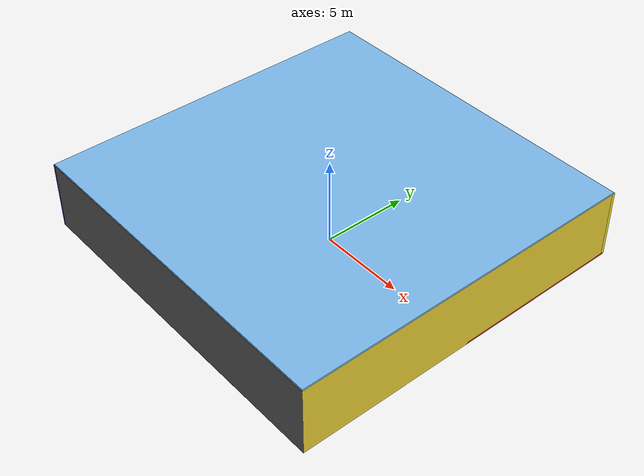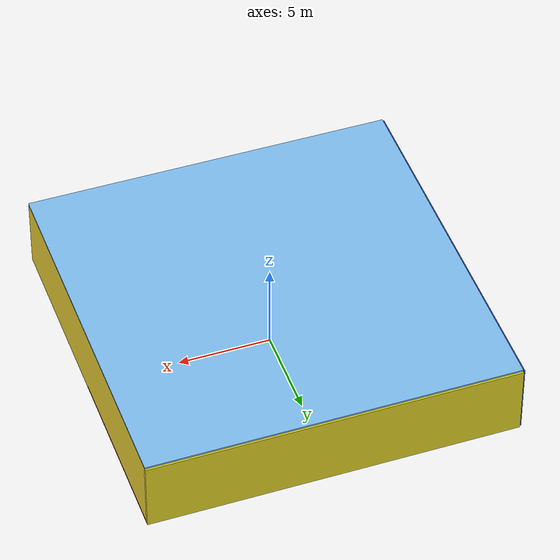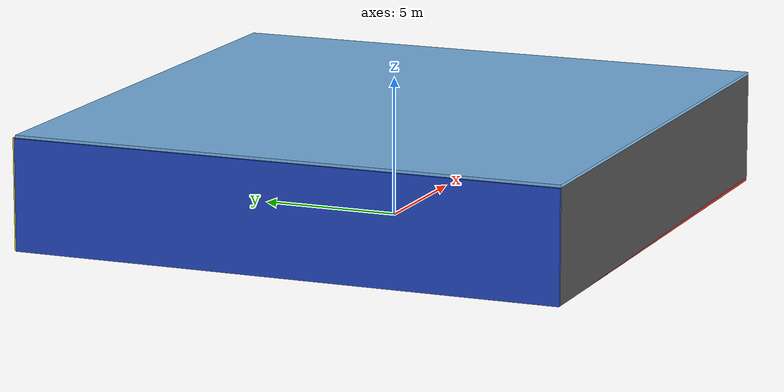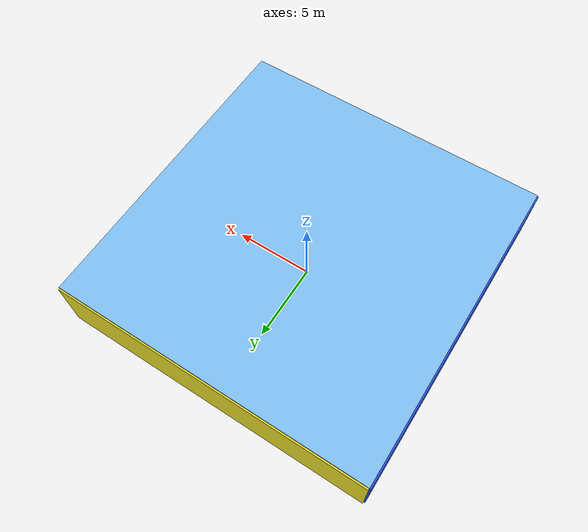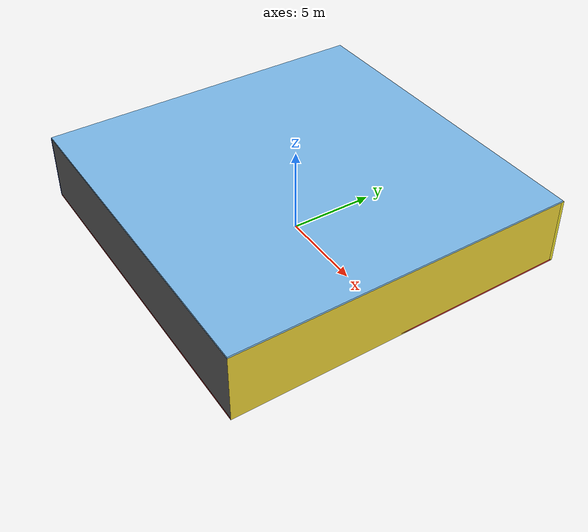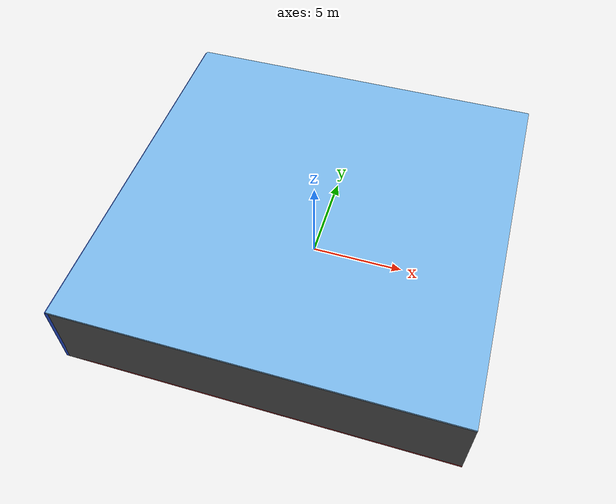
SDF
<sdf version="1.4">
 <world name="default">
  <physics type="ode">
   <max_step_size>0.001</max_step_size>
   <real_time_factor>1</real_time_factor>
   <real_time_update_rate>1000</real_time_update_rate>
   <gravity>0 0 -9.8</gravity>
  </physics>
  <scene><ambient>0.4 0.4 0.4 1</ambient><background>0.7 0.7 0.7 1</background><shadows>1</shadows></scene>
  <model name="Surrounding">
   <static>1</static>
   <link name="Ceiling">
    <collision name="Ceiling_Collision"><geometry><box><size>20 20 0.1</size></box></geometry></collision>
    <visual name="Ceiling_Visual">
     <geometry><box><size>20 20 0.1</size></box></geometry>
     <material>
      <script><uri>file://media/materials/scripts/gazebo.material</uri><name>Gazebo/SkyBlue</name></script>
     </material>
    </visual>
    <pose>0 0 4.05 0 0 0</pose>
   </link>
   <link name="Wall_South">
    <collision name="Wall_South_Collision">
     <geometry><box><size>20 0 4</size></box></geometry>
     <pose>0 0 2 0 -0 0</pose>
    </collision>
    <visual name="Wall_South_Visual">
     <pose>0 0 2 0 -0 0</pose>
     <geometry><box><size>20 0 4</size></box></geometry>
     <material>
      <script><uri>file://media/materials/scripts/gazebo.material</uri><name>Gazebo/Road</name></script>
     </material>
    </visual>
    <velocity_decay><linear>0</linear><angular>0</angular></velocity_decay>
    <pose>0 -10 0 0 -0 0</pose>
   </link>
   <link name="Wall_East">
    <collision name="Wall_21_Collision">
     <geometry><box><size>20 0 4</size></box></geometry>
     <pose>0 0 2 0 -0 0</pose>
    </collision>
    <visual name="Wall_21_Visual">
     <pose>0 0 2 0 -0 0</pose>
     <geometry><box><size>20 0 4</size></box></geometry>
     <material>
      <script><uri>file://media/materials/scripts/gazebo.material</uri><name>Gazebo/ZincYellow</name></script>
     </material>
    </visual>
    <velocity_decay><linear>0</linear><angular>0</angular></velocity_decay>
    <pose>10 0 0 0 -0 1.5708</pose>
   </link>
   <link name="Wall_North">
    <collision name="Wall_22_Collision">
     <geometry><box><size>20 0.2 4</size></box></geometry>
     <pose>0 0 2 0 -0 0</pose>
    </collision>
    <visual name="Wall_22_Visual">
     <pose>0 0 2 0 -0 0</pose>
     <geometry><box><size>20 0.2 4</size></box></geometry>
     <material>
      <script><uri>file://media/materials/scripts/gazebo.material</uri><name>Gazebo/YellowGlow</name></script>
     </material>
    </visual>
    <velocity_decay><linear>0</linear><angular>0</angular></velocity_decay>
    <pose>0 10 0 0 -0 0</pose>
   </link>
   <link name="Wall_West">
    <collision name="Wall_23_Collision">
     <geometry><box><size>20 0.2 4</size></box></geometry>
     <pose>0 0 2 0 -0 0</pose>
    </collision>
    <visual name="Wall_23_Visual">
     <pose>0 0 2 0 -0 0</pose>
     <geometry><box><size>20 0.2 4</size></box></geometry>
     <material>
      <script><uri>file://media/materials/scripts/gazebo.material</uri><name>Gazebo/Blue</name></script>
     </material>
    </visual>
    <velocity_decay><linear>0</linear><angular>0</angular></velocity_decay>
    <pose>-10 0 0 0 0 -1.5708</pose>
   </link>
   <link name="Ground_link">
    <collision name="collision">
     <pose>0 0 .05 0 -0 0</pose>
     <geometry><box><size>20 20 0.1</size></box></geometry>
    </collision>
    <visual name="visual">
     <pose>0 0 .05 0 -0 0</pose>
     <geometry><box><size>20 20 0.1</size></box></geometry>
     <material>
      <script><uri>file://media/materials/scripts/gazebo.material</uri><name>Gazebo/Red</name></script>
     </material>
    </visual>
   </link>
   <static>1</static>
  </model>
  <spherical_coordinates>
   <surface_model>EARTH_WGS84</surface_model>
   <latitude_deg>0</latitude_deg>
   <longitude_deg>0</longitude_deg>
   <elevation>0</elevation>
   <heading_deg>0</heading_deg>
  </spherical_coordinates>
  <light name="lightball_0" type="diffuse">
   <diffuse>0.8 0.8 0.8 1</diffuse>
   <specular>0.2 0.2 0.2 1</specular>
   <attenuation>
    <range>100</range>
    <constant>0.7</constant>
    <linear>0.01</linear>
    <quadratic>0.001</quadratic>
   </attenuation>
   <direction>-0.5 0.1 -0.9</direction>
   <pose>-0.304451151285 -2.68036827701 3.3761107302 0 0 0</pose>
  </light>
  <light name="lightball_1" type="diffuse">
   <diffuse>0.8 0.8 0.8 1</diffuse>
   <specular>0.2 0.2 0.2 1</specular>
   <attenuation>
    <range>100</range>
    <constant>0.7</constant>
    <linear>0.01</linear>
    <quadratic>0.001</quadratic>
   </attenuation>
   <direction>-0.5 0.1 -0.9</direction>
   <pose>6.03405595744 -9.97333964012 3.41489606779 0 0 0</pose>
  </light>
  <light name="lightball_2" type="diffuse">
   <diffuse>0.8 0.8 0.8 1</diffuse>
   <specular>0.2 0.2 0.2 1</specular>
   <attenuation>
    <range>100</range>
    <constant>0.7</constant>
    <linear>0.01</linear>
    <quadratic>0.001</quadratic>
   </attenuation>
   <direction>-0.5 0.1 -0.9</direction>
   <pose>-8.12329510246 9.22353238401 1.17342613035 0 0 0</pose>
  </light>
  <light name="lightball_3" type="diffuse">
   <diffuse>0.8 0.8 0.8 1</diffuse>
   <specular>0.2 0.2 0.2 1</specular>
   <attenuation>
    <range>100</range>
    <constant>0.7</constant>
    <linear>0.01</linear>
    <quadratic>0.001</quadratic>
   </attenuation>
   <direction>-0.5 0.1 -0.9</direction>
   <pose>-9.32276125046 -4.37374427819 0.628913812272 0 0 0</pose>
  </light>
  <light name="lightball_4" type="diffuse">
   <diffuse>0.8 0.8 0.8 1</diffuse>
   <specular>0.2 0.2 0.2 1</specular>
   <attenuation>
    <range>100</range>
    <constant>0.7</constant>
    <linear>0.01</linear>
    <quadratic>0.001</quadratic>
   </attenuation>
   <direction>-0.5 0.1 -0.9</direction>
   <pose>-0.48547420088 5.77164322937 2.10640928527 0 0 0</pose>
  </light>
  <light name="lightball_5" type="diffuse">
   <diffuse>0.8 0.8 0.8 1</diffuse>
   <specular>0.2 0.2 0.2 1</specular>
   <attenuation>
    <range>100</range>
    <constant>0.7</constant>
    <linear>0.01</linear>
    <quadratic>0.001</quadratic>
   </attenuation>
   <direction>-0.5 0.1 -0.9</direction>
   <pose>8.09963725815 6.43092380036 3.68310687575 0 0 0</pose>
  </light>
  <light name="lightball_6" type="diffuse">
   <diffuse>0.8 0.8 0.8 1</diffuse>
   <specular>0.2 0.2 0.2 1</specular>
   <attenuation>
    <range>100</range>
    <constant>0.7</constant>
    <linear>0.01</linear>
    <quadratic>0.001</quadratic>
   </attenuation>
   <direction>-0.5 0.1 -0.9</direction>
   <pose>-9.68735248892 -6.92883297861 2.97877220922 0 0 0</pose>
  </light>
  <light name="lightball_7" type="diffuse">
   <diffuse>0.8 0.8 0.8 1</diffuse>
   <specular>0.2 0.2 0.2 1</specular>
   <attenuation>
    <range>100</range>
    <constant>0.7</constant>
    <linear>0.01</linear>
    <quadratic>0.001</quadratic>
   </attenuation>
   <direction>-0.5 0.1 -0.9</direction>
   <pose>5.09810303307 -9.31160162413 0.794920353238 0 0 0</pose>
  </light>
  <light name="lightball_8" type="diffuse">
   <diffuse>0.8 0.8 0.8 1</diffuse>
   <specular>0.2 0.2 0.2 1</specular>
   <attenuation>
    <range>100</range>
    <constant>0.7</constant>
    <linear>0.01</linear>
    <quadratic>0.001</quadratic>
   </attenuation>
   <direction>-0.5 0.1 -0.9</direction>
   <pose>7.56117821217 -9.59414100387 1.31345018805 0 0 0</pose>
  </light>
  <light name="lightball_9" type="diffuse">
   <diffuse>0.8 0.8 0.8 1</diffuse>
   <specular>0.2 0.2 0.2 1</specular>
   <attenuation>
    <range>100</range>
    <constant>0.7</constant>
    <linear>0.01</linear>
    <quadratic>0.001</quadratic>
   </attenuation>
   <direction>-0.5 0.1 -0.9</direction>
   <pose>-6.45107453651 1.37713354335 1.40639403571 0 0 0</pose>
  </light>
  <light name="lightball_10" type="diffuse">
   <diffuse>0.8 0.8 0.8 1</diffuse>
   <specular>0.2 0.2 0.2 1</specular>
   <attenuation>
    <range>100</range>
    <constant>0.7</constant>
    <linear>0.01</linear>
    <quadratic>0.001</quadratic>
   </attenuation>
   <direction>-0.5 0.1 -0.9</direction>
   <pose>2.55765710491 -9.18842153076 2.82392135398 0 0 0</pose>
  </light>
  <include>
   <uri>model://construction_cone</uri>
   <pose>-7.45592013519 -7.63558354641 0 0 0 1.10660679569</pose>
  </include>
  <include><uri>model://cabinet</uri><pose>-7.0382411741 -5.29517166864 0 0 0 1.68823061943</pose></include>
  <include><uri>model://cabinet</uri><pose>-1.90046624974 -5.66992665052 0 0 0 2.57811277673</pose></include>
  <include><uri>model://cabinet</uri><pose>-2.08860950551 0.328765014918 0 0 0 0.994046552606</pose></include>
  <include>
   <uri>model://robocup_3Dsim_goal</uri>
   <pose>1.18833927998 1.66963450752 0 0 0 0.55185885611</pose>
  </include>
  <include>
   <uri>model://robocup_3Dsim_goal</uri>
   <pose>2.4473254005 6.55768655167 0 0 0 1.97133321011</pose>
  </include>
  <include><uri>model://cabinet</uri><pose>3.5038443443 7.02263933911 0 0 0 2.15571159084</pose></include>
  <include><uri>model://table</uri><pose>6.73867455458 8.36365943446 0 0 0 1.33506959985</pose></include>
 </world>
</sdf>

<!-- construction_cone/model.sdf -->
<sdf version="1.5">
  <model name="Construction Cone">
    <link name="link">
      <collision name="collision">
        <geometry>
          <mesh>
            <scale>10 10 10</scale>
            <uri>file://isr-testbed/construction_cone/meshes/construction_cone.dae</uri>
          </mesh>
        </geometry>
      </collision>
      <visual name="visual">
        <geometry>
          <mesh>
            <scale>10 10 10</scale>
            <uri>file://isr-testbed/construction_cone/meshes/construction_cone.dae</uri>
          </mesh>
        </geometry>
      </visual>
    </link>
  </model>
</sdf>

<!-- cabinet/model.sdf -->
<sdf version="1.5">
  <model name="cabinet">
    <static>true</static>
    <link name="cabinet_bottom_plate">
      <inertial>
        <pose>0 0 -1 0 0 0</pose>
        <inertia>
          <ixx>2.050000</ixx>
          <ixy>0</ixy>
          <ixz>0</ixz>
          <iyy>2.050000</iyy>
          <iyz>0</iyz>
          <izz>2.050000</izz>
        </inertia>
        <mass>25.000000</mass>
      </inertial>
      <collision name="cabinet_bottom_plate_geom">
        <pose>0 0 0.010000 0 0 0</pose>
        <geometry>
          <box>
            <size>0.450000 0.450000 0.020000</size>
          </box>
        </geometry>
      </collision>
      <visual name="cabinet_bottom_plate_geom_visual">
        <pose>0 0 0.010000 0 0 0</pose>
        <geometry>
          <box>
            <size>0.450000 0.450000 0.020000</size>
          </box>
        </geometry>
        <material>
          <script>
            <uri>model://media/materials/scripts/gazebo.material</uri>
            <name>Gazebo/Wood</name>
          </script>
        </material>
      </visual>
      <collision name="cabinet_bottom_plate_geom_cabinet_back_plate">
        <pose>0.235000 0 0.510000 0 0 0</pose>
        <geometry>
          <box>
            <size>0.020000 0.450000 1.020000</size>
          </box>
        </geometry>
      </collision>
      <visual name="cabinet_bottom_plate_geom_cabinet_back_plate_visual">
        <pose>0.235000 0 0.510000 0 0 0</pose>
        <geometry>
          <box>
            <size>0.020000 0.450000 1.020000</size>
          </box>
        </geometry>
        <material>
          <script>
            <uri>model://media/materials/scripts/gazebo.material</uri>
            <name>Gazebo/Wood</name>
          </script>
        </material>
      </visual>
      <collision name="cabinet_bottom_plate_geom_cabinet_left_plate">
        <pose>0 0.235000 0.510000 0 0 0</pose>
        <geometry>
          <box>
            <size>0.450000 0.020000 1.020000</size>
          </box>
        </geometry>
      </collision>
      <visual name="cabinet_bottom_plate_geom_cabinet_left_plate_visual">
        <pose>0 0.235000 0.510000 0 0 0</pose>
        <geometry>
          <box>
            <size>0.450000 0.020000 1.020000</size>
          </box>
        </geometry>
        <material>
          <script>
            <uri>model://media/materials/scripts/gazebo.material</uri>
            <name>Gazebo/Wood</name>
          </script>
        </material>
      </visual>
      <collision name="cabinet_bottom_plate_geom_cabinet_middle_plate">
        <pose>0 0 0.510000 0 0 0</pose>
        <geometry>
          <box>
            <size>0.450000 0.450000 0.020000</size>
          </box>
        </geometry>
      </collision>
      <visual name="cabinet_bottom_plate_geom_cabinet_middle_plate_visual">
        <pose>0 0 0.510000 0 0 0</pose>
        <geometry>
          <box>
            <size>0.450000 0.450000 0.020000</size>
          </box>
        </geometry>
        <material>
          <script>
            <uri>model://media/materials/scripts/gazebo.material</uri>
            <name>Gazebo/Wood</name>
          </script>
        </material>
      </visual>
      <collision name="cabinet_bottom_plate_geom_cabinet_right_plate">
        <pose>0 -0.235000 0.510000 0 0 0</pose>
        <geometry>
          <box>
            <size>0.450000 0.020000 1.020000</size>
          </box>
        </geometry>
      </collision>
      <visual name="cabinet_bottom_plate_geom_cabinet_right_plate_visual">
        <pose>0 -0.235000 0.510000 0 0 0</pose>
        <geometry>
          <box>
            <size>0.450000 0.020000 1.020000</size>
          </box>
        </geometry>
        <material>
          <script>
            <uri>model://media/materials/scripts/gazebo.material</uri>
            <name>Gazebo/Wood</name>
          </script>
        </material>
      </visual>
      <collision name="cabinet_bottom_plate_geom_cabinet_top_plate">
        <pose>0 0 1.010000 0 0 0</pose>
        <geometry>
          <box>
            <size>0.450000 0.450000 0.020000</size>
          </box>
        </geometry>
      </collision>
      <visual name="cabinet_bottom_plate_geom_cabinet_top_plate_visual">
        <pose>0 0 1.010000 0 0 0</pose>
        <geometry>
          <box>
            <size>0.450000 0.450000 0.020000</size>
          </box>
        </geometry>
        <material>
          <script>
            <uri>model://media/materials/scripts/gazebo.material</uri>
            <name>Gazebo/Wood</name>
          </script>
        </material>
      </visual>
    </link>
  </model>
</sdf>

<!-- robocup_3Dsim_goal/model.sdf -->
<sdf version="1.5">
  <model name="robocup_3d_goal">
    <static>true</static>
    <link name="left_post">
      <pose>0 1.05 0.45 0 0 0</pose>
      <collision name="collision">
        <geometry>
          <cylinder>
            <radius>0.05</radius>
            <length>0.9</length>
          </cylinder>
        </geometry>
      </collision>
      <visual name="visual">
        <geometry>
          <cylinder>
            <radius>0.05</radius>
            <length>0.9</length>
          </cylinder>
        </geometry>
        <material>
          <script>
            <uri>file://media/materials/scripts/gazebo.material</uri>
            <name>Gazebo/ZincYellow</name>
          </script>
        </material>
      </visual>
    </link>
    <link name="left_support_horiz_lower">
      <pose>0.30 1.05 0.01 0 0 0</pose>
      <collision name="collision">
        <geometry>
          <box>
            <size>0.50 0.02 0.02</size>
          </box>
        </geometry>
      </collision>
      <visual name="visual">
        <geometry>
          <box>
            <size>0.50 0.02 0.02</size>
          </box>
        </geometry>
        <material>
          <script>
            <uri>file://media/materials/scripts/gazebo.material</uri>
            <name>Gazebo/White</name>
          </script>
        </material>
      </visual>
    </link>
    <link name="left_support_horiz_upper">
      <pose>0.30 1.05 0.79 0 0 0</pose>
      <collision name="collision">
        <geometry>
          <box>
            <size>0.50 0.02 0.02</size>
          </box>
        </geometry>
      </collision>
      <visual name="visual">
        <geometry>
          <box>
            <size>0.50 0.02 0.02</size>
          </box>
        </geometry>
        <material>
          <script>
            <uri>file://media/materials/scripts/gazebo.material</uri>
            <name>Gazebo/White</name>
          </script>
        </material>
      </visual>
    </link>
    <link name="left_support_vertical">
      <pose>0.56 1.05 0.4 0 1.5708 0</pose>
      <collision name="collision">
        <geometry>
          <box>
            <size>0.80 0.02 0.02</size>
          </box>
        </geometry>
      </collision>
      <visual name="visual">
        <geometry>
          <box>
            <size>0.80 0.02 0.02</size>
          </box>
        </geometry>
        <material>
          <script>
            <uri>file://media/materials/scripts/gazebo.material</uri>
            <name>Gazebo/White</name>
          </script>
        </material>
      </visual>
    </link>
    <link name="right_support_horiz_lower">
      <pose>0.30 -1.05 0.01 0 0 0</pose>
      <collision name="collision">
        <geometry>
          <box>
            <size>0.50 0.02 0.02</size>
          </box>
        </geometry>
      </collision>
      <visual name="visual">
        <geometry>
          <box>
            <size>0.50 0.02 0.02</size>
          </box>
        </geometry>
        <material>
          <script>
            <uri>file://media/materials/scripts/gazebo.material</uri>
            <name>Gazebo/White</name>
          </script>
        </material>
      </visual>
    </link>
    <link name="right_support_horiz_upper">
      <pose>0.30 -1.05 0.79 0 0 0</pose>
      <collision name="collision">
        <geometry>
          <box>
            <size>0.50 0.02 0.02</size>
          </box>
        </geometry>
      </collision>
      <visual name="visual">
        <geometry>
          <box>
            <size>0.50 0.02 0.02</size>
          </box>
        </geometry>
        <material>
          <script>
            <uri>file://media/materials/scripts/gazebo.material</uri>
            <name>Gazebo/White</name>
          </script>
        </material>
      </visual>
    </link>
    <link name="right_support_vertical">
      <pose>0.56 -1.05 0.4 0 1.5708 0</pose>
      <collision name="collision">
        <geometry>
          <box>
            <size>0.80 0.02 0.02</size>
          </box>
        </geometry>
      </collision>
      <visual name="visual">
        <geometry>
          <box>
            <size>0.80 0.02 0.02</size>
          </box>
        </geometry>
        <material>
          <script>
            <uri>file://media/materials/scripts/gazebo.material</uri>
            <name>Gazebo/White</name>
          </script>
        </material>
      </visual>
    </link>
    <link name="center_support_horiz_lower">
      <pose>0.56 0 0.01 0 1.5708 0</pose>
      <collision name="collision">
        <geometry>
          <box>
            <size>0.02 2.08 0.02</size>
          </box>
        </geometry>
      </collision>
      <visual name="visual">
        <geometry>
          <box>
            <size>0.02 2.08 0.02</size>
          </box>
        </geometry>
        <material>
          <script>
            <uri>file://media/materials/scripts/gazebo.material</uri>
            <name>Gazebo/White</name>
          </script>
        </material>
      </visual>
    </link>
    <link name="center_support_horiz_upper">
      <pose>0.56 0 0.79 0 1.5708 0</pose>
      <collision name="collision">
        <geometry>
          <box>
            <size>0.02 2.08 0.02</size>
          </box>
        </geometry>
      </collision>
      <visual name="visual">
        <geometry>
          <box>
            <size>0.02 2.08 0.02</size>
          </box>
        </geometry>
        <material>
          <script>
            <uri>file://media/materials/scripts/gazebo.material</uri>
            <name>Gazebo/White</name>
          </script>
        </material>
      </visual>
    </link>
    <link name="right_post">
      <pose>0 -1.05 0.45 0 0 0</pose>
      <collision name="collision">
        <geometry>
          <cylinder>
            <radius>0.05</radius>
            <length>0.9</length>
          </cylinder>
        </geometry>
      </collision>
      <visual name="visual">
        <geometry>
          <cylinder>
            <radius>0.05</radius>
            <length>0.9</length>
          </cylinder>
        </geometry>
        <material>
          <script>
            <uri>file://media/materials/scripts/gazebo.material</uri>
            <name>Gazebo/ZincYellow</name>
          </script>
        </material>
      </visual>
    </link>
    <link name="crossbar">
      <pose>0 0 0.85 1.57 1.57 0</pose>
      <collision name="collision">
        <geometry>
          <cylinder>
            <radius>0.05</radius>
            <length>2.0</length>
          </cylinder>
        </geometry>
      </collision>
      <visual name="visual">
        <geometry>
          <cylinder>
            <radius>0.05</radius>
            <length>2.0</length>
          </cylinder>
        </geometry>
        <material>
          <script>
            <uri>file://media/materials/scripts/gazebo.material</uri>
            <name>Gazebo/ZincYellow</name>
          </script>
        </material>
      </visual>
    </link>
    <link name="center_net">
      <pose>0.56 0 0.40 0 0 0</pose>
      <collision name="collision">
        <geometry>
          <box>
            <size>0.01 2.1 0.80</size>
          </box>
        </geometry>
      </collision>
      <visual name="visual">
        <geometry>
          <box>
            <size>0.01 2.1 0.80</size>
          </box>
        </geometry>
        <material>
          <script>
            <uri>model://../model_source/models/robocup09_spl_field/materials/scripts/</uri>
            <uri>model://../model_source/models/robocup09_spl_field/materials/textures/</uri>
            <name>RoboCup/Net</name>
          </script>
        </material>
      </visual>
    </link>
    <link name="left_net">
      <pose>0.30 1.05 0.40 0 0 0</pose>
      <collision name="collision">
        <geometry>
          <box>
            <size>0.50 0.01 0.76</size>
          </box>
        </geometry>
      </collision>
      <visual name="visual">
        <geometry>
          <box>
            <size>0.50 0.01 0.76</size>
          </box>
        </geometry>
        <material>
          <script>
            <uri>model://../model_source/models/robocup09_spl_field/materials/scripts/</uri>
            <uri>model://../model_source/models/robocup09_spl_field/materials/textures/</uri>
            <name>RoboCup/Net</name>
          </script>
        </material>
      </visual>
    </link>
    <link name="right_net">
      <pose>0.30 -1.05 0.40 0 0 0</pose>
      <collision name="collision">
        <geometry>
          <box>
            <size>0.50 0.01 0.76</size>
          </box>
        </geometry>
      </collision>
      <visual name="visual">
        <geometry>
          <box>
            <size>0.50 0.01 0.76</size>
          </box>
        </geometry>
        <material>
          <script>
            <uri>model://../model_source/models/robocup09_spl_field/materials/scripts/</uri>
            <uri>model://../model_source/models/robocup09_spl_field/materials/textures/</uri>
            <name>RoboCup/Net</name>
          </script>
        </material>
      </visual>
    </link>
  </model>
</sdf>

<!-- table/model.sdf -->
<sdf version="1.5">
  <model name="table">
    <static>true</static>
    <link name="link">
      <collision name="surface">
        <pose>0 0 1.0 0 0 0</pose>
        <geometry>
          <box>
            <size>1.5 0.8 0.03</size>
          </box>
        </geometry>
        <surface>
          <friction>
            <ode>
              <mu>0.6</mu>
              <mu2>0.6</mu2>
            </ode>
          </friction>
        </surface>
      </collision>
      <visual name="visual1">
        <pose>0 0 1.0 0 0 0</pose>
        <geometry>
          <box>
            <size>1.5 0.8 0.03</size>
          </box>
        </geometry>
        <material>
          <script>
            <uri>model://media/materials/scripts/gazebo.material</uri>
            <name>Gazebo/Wood</name>
          </script>
        </material>
      </visual>
      <collision name="front_left_leg">
        <pose>0.68 0.38 0.5 0 0 0</pose>
        <geometry>
          <cylinder>
            <radius>0.02</radius>
            <length>1.0</length>
          </cylinder>
        </geometry>
      </collision>
      <visual name="front_left_leg">
        <pose>0.68 0.38 0.5 0 0 0</pose>
        <geometry>
          <cylinder>
            <radius>0.02</radius>
            <length>1.0</length>
          </cylinder>
        </geometry>
        <material>
          <script>
            <uri>model://media/materials/scripts/gazebo.material</uri>
            <name>Gazebo/Grey</name>
          </script>
        </material>
      </visual>
      <collision name="front_right_leg">
        <pose>0.68 -0.38 0.5 0 0 0</pose>
        <geometry>
          <cylinder>
            <radius>0.02</radius>
            <length>1.0</length>
          </cylinder>
        </geometry>
      </collision>
      <visual name="front_right_leg">
        <pose>0.68 -0.38 0.5 0 0 0</pose>
        <geometry>
          <cylinder>
            <radius>0.02</radius>
            <length>1.0</length>
          </cylinder>
        </geometry>
        <material>
          <script>
            <uri>model://media/materials/scripts/gazebo.material</uri>
            <name>Gazebo/Grey</name>
          </script>
        </material>
      </visual>
      <collision name="back_right_leg">
        <pose>-0.68 -0.38 0.5 0 0 0</pose>
        <geometry>
          <cylinder>
            <radius>0.02</radius>
            <length>1.0</length>
          </cylinder>
        </geometry>
      </collision>
      <visual name="back_right_leg">
        <pose>-0.68 -0.38 0.5 0 0 0</pose>
        <geometry>
          <cylinder>
            <radius>0.02</radius>
            <length>1.0</length>
          </cylinder>
        </geometry>
        <material>
          <script>
            <uri>model://media/materials/scripts/gazebo.material</uri>
            <name>Gazebo/Grey</name>
          </script>
        </material>
      </visual>
      <collision name="back_left_leg">
        <pose>-0.68 0.38 0.5 0 0 0</pose>
        <geometry>
          <cylinder>
            <radius>0.02</radius>
            <length>1.0</length>
          </cylinder>
        </geometry>
      </collision>
      <visual name="back_left_leg">
        <pose>-0.68 0.38 0.5 0 0 0</pose>
        <geometry>
          <cylinder>
            <radius>0.02</radius>
            <length>1.0</length>
          </cylinder>
        </geometry>
        <material>
          <script>
            <uri>model://media/materials/scripts/gazebo.material</uri>
            <name>Gazebo/Grey</name>
          </script>
        </material>
      </visual>
    </link>
  </model>
</sdf>
